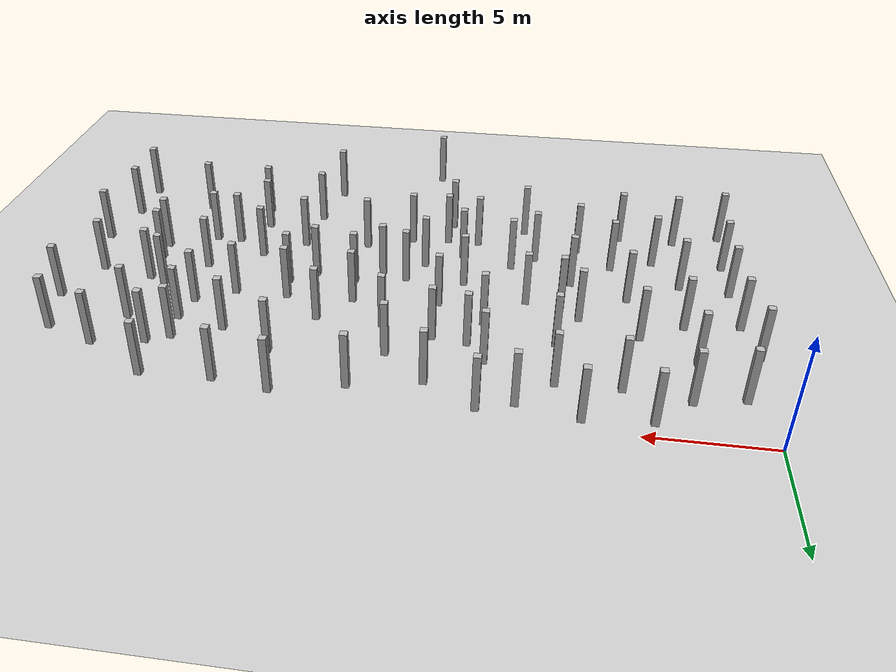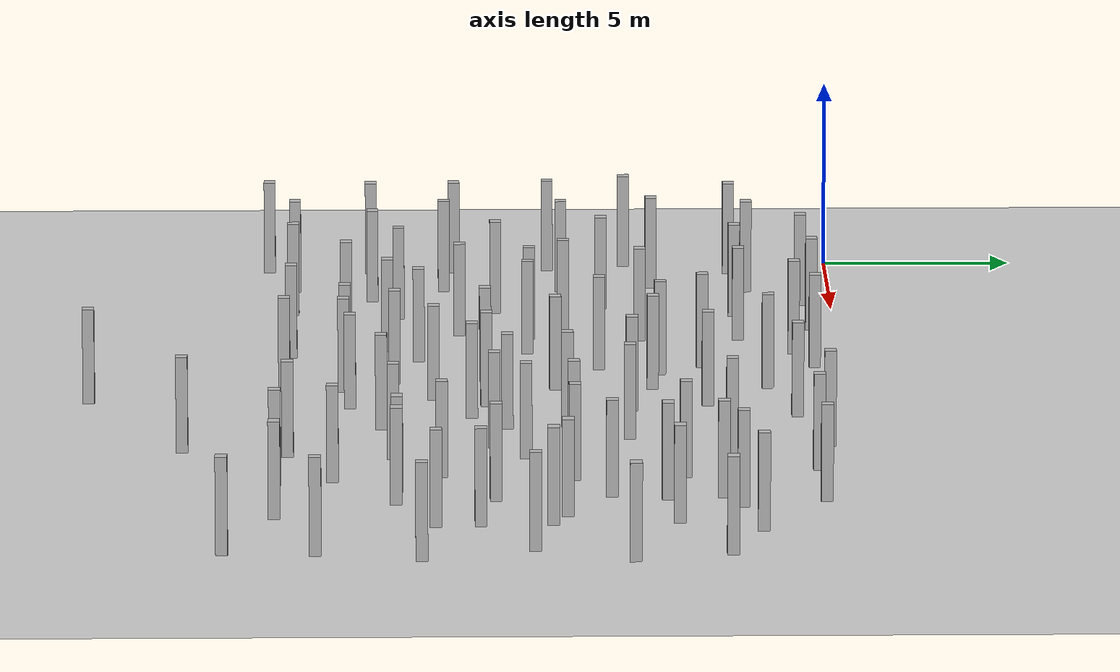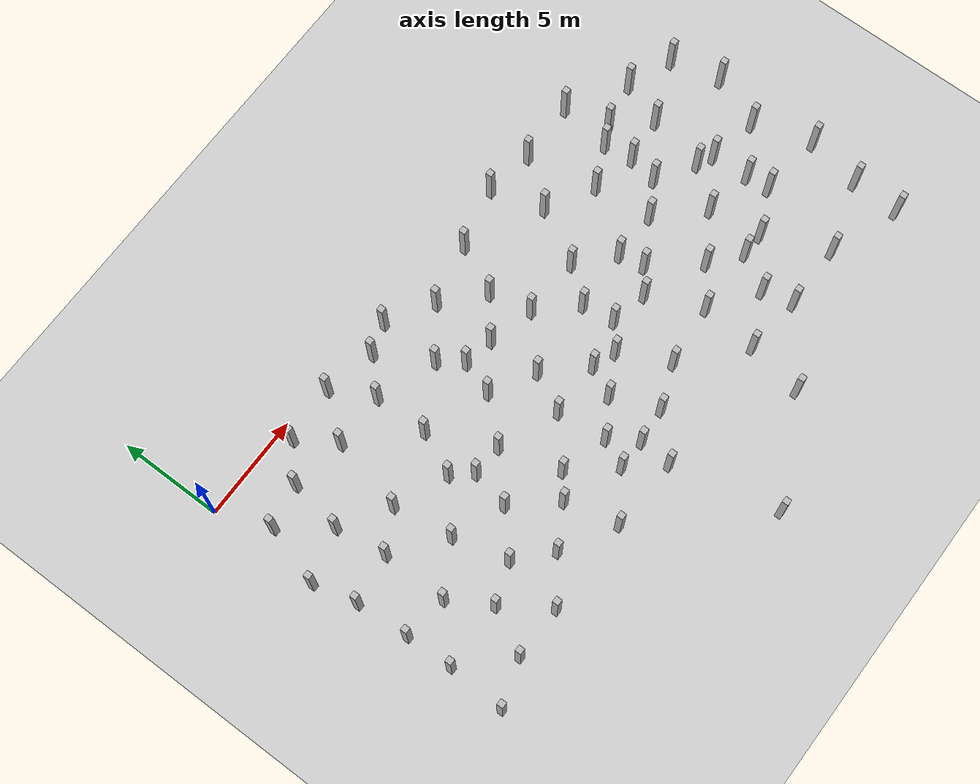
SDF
<sdf version="1.6">
 <world name="random_boxes_30x15_doubled">
  <include><uri>model://sun</uri></include>
  <include><uri>model://ground_plane</uri></include>
  <model name="box_32">
   <static>true</static>
   <pose>9.607 -1.170 1.250 0 0 0</pose>
   <link name="link">
    <visual name="visual"><geometry><box><size>0.3 0.3 2.5</size></box></geometry></visual>
    <collision name="collision"><geometry><box><size>0.3 0.3 2.5</size></box></geometry></collision>
   </link>
  </model>
  <model name="box_33">
   <static>true</static>
   <pose>24.341 -0.869 1.250 0 0 0</pose>
   <link name="link">
    <visual name="visual"><geometry><box><size>0.3 0.3 2.5</size></box></geometry></visual>
    <collision name="collision"><geometry><box><size>0.3 0.3 2.5</size></box></geometry></collision>
   </link>
  </model>
  <model name="box_34">
   <static>true</static>
   <pose>10.990 -3.620 1.250 0 0 0</pose>
   <link name="link">
    <visual name="visual"><geometry><box><size>0.3 0.3 2.5</size></box></geometry></visual>
    <collision name="collision"><geometry><box><size>0.3 0.3 2.5</size></box></geometry></collision>
   </link>
  </model>
  <model name="box_35">
   <static>true</static>
   <pose>11.214 -6.315 1.250 0 0 0</pose>
   <link name="link">
    <visual name="visual"><geometry><box><size>0.3 0.3 2.5</size></box></geometry></visual>
    <collision name="collision"><geometry><box><size>0.3 0.3 2.5</size></box></geometry></collision>
   </link>
  </model>
  <model name="box_38">
   <static>true</static>
   <pose>7.132 -0.618 1.250 0 0 0</pose>
   <link name="link">
    <visual name="visual"><geometry><box><size>0.3 0.3 2.5</size></box></geometry></visual>
    <collision name="collision"><geometry><box><size>0.3 0.3 2.5</size></box></geometry></collision>
   </link>
  </model>
  <model name="box_40">
   <static>true</static>
   <pose>21.379 -0.948 1.250 0 0 0</pose>
   <link name="link">
    <visual name="visual"><geometry><box><size>0.3 0.3 2.5</size></box></geometry></visual>
    <collision name="collision"><geometry><box><size>0.3 0.3 2.5</size></box></geometry></collision>
   </link>
  </model>
  <model name="box_41">
   <static>true</static>
   <pose>19.031 -0.583 1.250 0 0 0</pose>
   <link name="link">
    <visual name="visual"><geometry><box><size>0.3 0.3 2.5</size></box></geometry></visual>
    <collision name="collision"><geometry><box><size>0.3 0.3 2.5</size></box></geometry></collision>
   </link>
  </model>
  <model name="box_42">
   <static>true</static>
   <pose>8.155 -2.593 1.250 0 0 0</pose>
   <link name="link">
    <visual name="visual"><geometry><box><size>0.3 0.3 2.5</size></box></geometry></visual>
    <collision name="collision"><geometry><box><size>0.3 0.3 2.5</size></box></geometry></collision>
   </link>
  </model>
  <model name="box_47">
   <static>true</static>
   <pose>13.185 -1.972 1.250 0 0 0</pose>
   <link name="link">
    <visual name="visual"><geometry><box><size>0.3 0.3 2.5</size></box></geometry></visual>
    <collision name="collision"><geometry><box><size>0.3 0.3 2.5</size></box></geometry></collision>
   </link>
  </model>
  <model name="box_48">
   <static>true</static>
   <pose>13.267 -7.492 1.250 0 0 0</pose>
   <link name="link">
    <visual name="visual"><geometry><box><size>0.3 0.3 2.5</size></box></geometry></visual>
    <collision name="collision"><geometry><box><size>0.3 0.3 2.5</size></box></geometry></collision>
   </link>
  </model>
  <model name="box_49">
   <static>true</static>
   <pose>12.338 -9.302 1.250 0 0 0</pose>
   <link name="link">
    <visual name="visual"><geometry><box><size>0.3 0.3 2.5</size></box></geometry></visual>
    <collision name="collision"><geometry><box><size>0.3 0.3 2.5</size></box></geometry></collision>
   </link>
  </model>
  <model name="box_50">
   <static>true</static>
   <pose>14.975 -3.578 1.250 0 0 0</pose>
   <link name="link">
    <visual name="visual"><geometry><box><size>0.3 0.3 2.5</size></box></geometry></visual>
    <collision name="collision"><geometry><box><size>0.3 0.3 2.5</size></box></geometry></collision>
   </link>
  </model>
  <model name="box_53">
   <static>true</static>
   <pose>9.514 -8.173 1.250 0 0 0</pose>
   <link name="link">
    <visual name="visual"><geometry><box><size>0.3 0.3 2.5</size></box></geometry></visual>
    <collision name="collision"><geometry><box><size>0.3 0.3 2.5</size></box></geometry></collision>
   </link>
  </model>
  <model name="box_56">
   <static>true</static>
   <pose>16.117 -1.301 1.250 0 0 0</pose>
   <link name="link">
    <visual name="visual"><geometry><box><size>0.3 0.3 2.5</size></box></geometry></visual>
    <collision name="collision"><geometry><box><size>0.3 0.3 2.5</size></box></geometry></collision>
   </link>
  </model>
  <model name="box_62">
   <static>true</static>
   <pose>7.594 -9.944 1.250 0 0 0</pose>
   <link name="link">
    <visual name="visual"><geometry><box><size>0.3 0.3 2.5</size></box></geometry></visual>
    <collision name="collision"><geometry><box><size>0.3 0.3 2.5</size></box></geometry></collision>
   </link>
  </model>
  <model name="box_63">
   <static>true</static>
   <pose>8.157 -5.200 1.250 0 0 0</pose>
   <link name="link">
    <visual name="visual"><geometry><box><size>0.3 0.3 2.5</size></box></geometry></visual>
    <collision name="collision"><geometry><box><size>0.3 0.3 2.5</size></box></geometry></collision>
   </link>
  </model>
  <model name="box_64">
   <static>true</static>
   <pose>5.797 -11.557 1.250 0 0 0</pose>
   <link name="link">
    <visual name="visual"><geometry><box><size>0.3 0.3 2.5</size></box></geometry></visual>
    <collision name="collision"><geometry><box><size>0.3 0.3 2.5</size></box></geometry></collision>
   </link>
  </model>
  <model name="box_65">
   <static>true</static>
   <pose>14.249 -10.650 1.250 0 0 0</pose>
   <link name="link">
    <visual name="visual"><geometry><box><size>0.3 0.3 2.5</size></box></geometry></visual>
    <collision name="collision"><geometry><box><size>0.3 0.3 2.5</size></box></geometry></collision>
   </link>
  </model>
  <model name="box_66">
   <static>true</static>
   <pose>16.068 -9.671 1.250 0 0 0</pose>
   <link name="link">
    <visual name="visual"><geometry><box><size>0.3 0.3 2.5</size></box></geometry></visual>
    <collision name="collision"><geometry><box><size>0.3 0.3 2.5</size></box></geometry></collision>
   </link>
  </model>
  <model name="box_68">
   <static>true</static>
   <pose>5.149 -8.977 1.250 0 0 0</pose>
   <link name="link">
    <visual name="visual"><geometry><box><size>0.3 0.3 2.5</size></box></geometry></visual>
    <collision name="collision"><geometry><box><size>0.3 0.3 2.5</size></box></geometry></collision>
   </link>
  </model>
  <model name="box_69">
   <static>true</static>
   <pose>27.077 -2.532 1.250 0 0 0</pose>
   <link name="link">
    <visual name="visual"><geometry><box><size>0.3 0.3 2.5</size></box></geometry></visual>
    <collision name="collision"><geometry><box><size>0.3 0.3 2.5</size></box></geometry></collision>
   </link>
  </model>
  <model name="box_70">
   <static>true</static>
   <pose>5.330 -14.362 1.250 0 0 0</pose>
   <link name="link">
    <visual name="visual"><geometry><box><size>0.3 0.3 2.5</size></box></geometry></visual>
    <collision name="collision"><geometry><box><size>0.3 0.3 2.5</size></box></geometry></collision>
   </link>
  </model>
  <model name="box_72">
   <static>true</static>
   <pose>2.793 -14.334 1.250 0 0 0</pose>
   <link name="link">
    <visual name="visual"><geometry><box><size>0.3 0.3 2.5</size></box></geometry></visual>
    <collision name="collision"><geometry><box><size>0.3 0.3 2.5</size></box></geometry></collision>
   </link>
  </model>
  <model name="box_73">
   <static>true</static>
   <pose>17.202 -11.999 1.250 0 0 0</pose>
   <link name="link">
    <visual name="visual"><geometry><box><size>0.3 0.3 2.5</size></box></geometry></visual>
    <collision name="collision"><geometry><box><size>0.3 0.3 2.5</size></box></geometry></collision>
   </link>
  </model>
  <model name="box_75">
   <static>true</static>
   <pose>0.733 -12.309 1.250 0 0 0</pose>
   <link name="link">
    <visual name="visual"><geometry><box><size>0.3 0.3 2.5</size></box></geometry></visual>
    <collision name="collision"><geometry><box><size>0.3 0.3 2.5</size></box></geometry></collision>
   </link>
  </model>
  <model name="box_76">
   <static>true</static>
   <pose>15.127 -12.809 1.250 0 0 0</pose>
   <link name="link">
    <visual name="visual"><geometry><box><size>0.3 0.3 2.5</size></box></geometry></visual>
    <collision name="collision"><geometry><box><size>0.3 0.3 2.5</size></box></geometry></collision>
   </link>
  </model>
  <model name="box_77">
   <static>true</static>
   <pose>0.665 -10.064 1.250 0 0 0</pose>
   <link name="link">
    <visual name="visual"><geometry><box><size>0.3 0.3 2.5</size></box></geometry></visual>
    <collision name="collision"><geometry><box><size>0.3 0.3 2.5</size></box></geometry></collision>
   </link>
  </model>
  <model name="box_79">
   <static>true</static>
   <pose>4.726 -6.159 1.250 0 0 0</pose>
   <link name="link">
    <visual name="visual"><geometry><box><size>0.3 0.3 2.5</size></box></geometry></visual>
    <collision name="collision"><geometry><box><size>0.3 0.3 2.5</size></box></geometry></collision>
   </link>
  </model>
  <model name="box_80">
   <static>true</static>
   <pose>9.264 -11.854 1.250 0 0 0</pose>
   <link name="link">
    <visual name="visual"><geometry><box><size>0.3 0.3 2.5</size></box></geometry></visual>
    <collision name="collision"><geometry><box><size>0.3 0.3 2.5</size></box></geometry></collision>
   </link>
  </model>
  <model name="box_81">
   <static>true</static>
   <pose>7.227 -7.199 1.250 0 0 0</pose>
   <link name="link">
    <visual name="visual"><geometry><box><size>0.3 0.3 2.5</size></box></geometry></visual>
    <collision name="collision"><geometry><box><size>0.3 0.3 2.5</size></box></geometry></collision>
   </link>
  </model>
  <model name="box_82">
   <static>true</static>
   <pose>20.149 -11.694 1.250 0 0 0</pose>
   <link name="link">
    <visual name="visual"><geometry><box><size>0.3 0.3 2.5</size></box></geometry></visual>
    <collision name="collision"><geometry><box><size>0.3 0.3 2.5</size></box></geometry></collision>
   </link>
  </model>
  <model name="box_84">
   <static>true</static>
   <pose>5.568 -2.623 1.250 0 0 0</pose>
   <link name="link">
    <visual name="visual"><geometry><box><size>0.3 0.3 2.5</size></box></geometry></visual>
    <collision name="collision"><geometry><box><size>0.3 0.3 2.5</size></box></geometry></collision>
   </link>
  </model>
  <model name="box_85">
   <static>true</static>
   <pose>17.014 -7.233 1.250 0 0 0</pose>
   <link name="link">
    <visual name="visual"><geometry><box><size>0.3 0.3 2.5</size></box></geometry></visual>
    <collision name="collision"><geometry><box><size>0.3 0.3 2.5</size></box></geometry></collision>
   </link>
  </model>
  <model name="box_86">
   <static>true</static>
   <pose>2.509 -4.770 1.250 0 0 0</pose>
   <link name="link">
    <visual name="visual"><geometry><box><size>0.3 0.3 2.5</size></box></geometry></visual>
    <collision name="collision"><geometry><box><size>0.3 0.3 2.5</size></box></geometry></collision>
   </link>
  </model>
  <model name="box_87">
   <static>true</static>
   <pose>13.319 -14.522 1.250 0 0 0</pose>
   <link name="link">
    <visual name="visual"><geometry><box><size>0.3 0.3 2.5</size></box></geometry></visual>
    <collision name="collision"><geometry><box><size>0.3 0.3 2.5</size></box></geometry></collision>
   </link>
  </model>
  <model name="box_92">
   <static>true</static>
   <pose>7.337 -12.948 1.250 0 0 0</pose>
   <link name="link">
    <visual name="visual"><geometry><box><size>0.3 0.3 2.5</size></box></geometry></visual>
    <collision name="collision"><geometry><box><size>0.3 0.3 2.5</size></box></geometry></collision>
   </link>
  </model>
  <model name="box_93">
   <static>true</static>
   <pose>0.506 -7.538 1.250 0 0 0</pose>
   <link name="link">
    <visual name="visual"><geometry><box><size>0.3 0.3 2.5</size></box></geometry></visual>
    <collision name="collision"><geometry><box><size>0.3 0.3 2.5</size></box></geometry></collision>
   </link>
  </model>
  <model name="box_94">
   <static>true</static>
   <pose>15.419 -5.550 1.250 0 0 0</pose>
   <link name="link">
    <visual name="visual"><geometry><box><size>0.3 0.3 2.5</size></box></geometry></visual>
    <collision name="collision"><geometry><box><size>0.3 0.3 2.5</size></box></geometry></collision>
   </link>
  </model>
  <model name="box_95">
   <static>true</static>
   <pose>0.024 -5.466 1.250 0 0 0</pose>
   <link name="link">
    <visual name="visual"><geometry><box><size>0.3 0.3 2.5</size></box></geometry></visual>
    <collision name="collision"><geometry><box><size>0.3 0.3 2.5</size></box></geometry></collision>
   </link>
  </model>
  <model name="box_96">
   <static>true</static>
   <pose>3.891 -12.258 1.250 0 0 0</pose>
   <link name="link">
    <visual name="visual"><geometry><box><size>0.3 0.3 2.5</size></box></geometry></visual>
    <collision name="collision"><geometry><box><size>0.3 0.3 2.5</size></box></geometry></collision>
   </link>
  </model>
  <model name="box_97">
   <static>true</static>
   <pose>11.995 -12.954 1.250 0 0 0</pose>
   <link name="link">
    <visual name="visual"><geometry><box><size>0.3 0.3 2.5</size></box></geometry></visual>
    <collision name="collision"><geometry><box><size>0.3 0.3 2.5</size></box></geometry></collision>
   </link>
  </model>
  <model name="box_98">
   <static>true</static>
   <pose>26.292 -4.584 1.250 0 0 0</pose>
   <link name="link">
    <visual name="visual"><geometry><box><size>0.3 0.3 2.5</size></box></geometry></visual>
    <collision name="collision"><geometry><box><size>0.3 0.3 2.5</size></box></geometry></collision>
   </link>
  </model>
  <model name="box_100">
   <static>true</static>
   <pose>0.906 -2.638 1.250 0 0 0</pose>
   <link name="link">
    <visual name="visual"><geometry><box><size>0.3 0.3 2.5</size></box></geometry></visual>
    <collision name="collision"><geometry><box><size>0.3 0.3 2.5</size></box></geometry></collision>
   </link>
  </model>
  <model name="box_101">
   <static>true</static>
   <pose>19.896 -14.367 1.250 0 0 0</pose>
   <link name="link">
    <visual name="visual"><geometry><box><size>0.3 0.3 2.5</size></box></geometry></visual>
    <collision name="collision"><geometry><box><size>0.3 0.3 2.5</size></box></geometry></collision>
   </link>
  </model>
  <model name="box_103">
   <static>true</static>
   <pose>29.272 -3.357 1.250 0 0 0</pose>
   <link name="link">
    <visual name="visual"><geometry><box><size>0.3 0.3 2.5</size></box></geometry></visual>
    <collision name="collision"><geometry><box><size>0.3 0.3 2.5</size></box></geometry></collision>
   </link>
  </model>
  <model name="box_104">
   <static>true</static>
   <pose>2.790 -10.345 1.250 0 0 0</pose>
   <link name="link">
    <visual name="visual"><geometry><box><size>0.3 0.3 2.5</size></box></geometry></visual>
    <collision name="collision"><geometry><box><size>0.3 0.3 2.5</size></box></geometry></collision>
   </link>
  </model>
  <model name="box_105">
   <static>true</static>
   <pose>19.723 -3.090 1.250 0 0 0</pose>
   <link name="link">
    <visual name="visual"><geometry><box><size>0.3 0.3 2.5</size></box></geometry></visual>
    <collision name="collision"><geometry><box><size>0.3 0.3 2.5</size></box></geometry></collision>
   </link>
  </model>
  <model name="box_107">
   <static>true</static>
   <pose>21.999 -4.325 1.250 0 0 0</pose>
   <link name="link">
    <visual name="visual"><geometry><box><size>0.3 0.3 2.5</size></box></geometry></visual>
    <collision name="collision"><geometry><box><size>0.3 0.3 2.5</size></box></geometry></collision>
   </link>
  </model>
  <model name="box_108">
   <static>true</static>
   <pose>22.332 -13.213 1.250 0 0 0</pose>
   <link name="link">
    <visual name="visual"><geometry><box><size>0.3 0.3 2.5</size></box></geometry></visual>
    <collision name="collision"><geometry><box><size>0.3 0.3 2.5</size></box></geometry></collision>
   </link>
  </model>
  <model name="box_109">
   <static>true</static>
   <pose>4.441 -0.820 1.250 0 0 0</pose>
   <link name="link">
    <visual name="visual"><geometry><box><size>0.3 0.3 2.5</size></box></geometry></visual>
    <collision name="collision"><geometry><box><size>0.3 0.3 2.5</size></box></geometry></collision>
   </link>
  </model>
  <model name="box_110">
   <static>true</static>
   <pose>19.935 -7.115 1.250 0 0 0</pose>
   <link name="link">
    <visual name="visual"><geometry><box><size>0.3 0.3 2.5</size></box></geometry></visual>
    <collision name="collision"><geometry><box><size>0.3 0.3 2.5</size></box></geometry></collision>
   </link>
  </model>
  <model name="box_111">
   <static>true</static>
   <pose>29.847 -5.750 1.250 0 0 0</pose>
   <link name="link">
    <visual name="visual"><geometry><box><size>0.3 0.3 2.5</size></box></geometry></visual>
    <collision name="collision"><geometry><box><size>0.3 0.3 2.5</size></box></geometry></collision>
   </link>
  </model>
  <model name="box_112">
   <static>true</static>
   <pose>19.030 -9.124 1.250 0 0 0</pose>
   <link name="link">
    <visual name="visual"><geometry><box><size>0.3 0.3 2.5</size></box></geometry></visual>
    <collision name="collision"><geometry><box><size>0.3 0.3 2.5</size></box></geometry></collision>
   </link>
  </model>
  <model name="box_113">
   <static>true</static>
   <pose>13.234 -4.960 1.250 0 0 0</pose>
   <link name="link">
    <visual name="visual"><geometry><box><size>0.3 0.3 2.5</size></box></geometry></visual>
    <collision name="collision"><geometry><box><size>0.3 0.3 2.5</size></box></geometry></collision>
   </link>
  </model>
  <model name="box_115">
   <static>true</static>
   <pose>24.506 -11.611 1.250 0 0 0</pose>
   <link name="link">
    <visual name="visual"><geometry><box><size>0.3 0.3 2.5</size></box></geometry></visual>
    <collision name="collision"><geometry><box><size>0.3 0.3 2.5</size></box></geometry></collision>
   </link>
  </model>
  <model name="box_116">
   <static>true</static>
   <pose>22.254 -7.123 1.250 0 0 0</pose>
   <link name="link">
    <visual name="visual"><geometry><box><size>0.3 0.3 2.5</size></box></geometry></visual>
    <collision name="collision"><geometry><box><size>0.3 0.3 2.5</size></box></geometry></collision>
   </link>
  </model>
  <model name="box_117">
   <static>true</static>
   <pose>14.496 -19.554 1.250 0 0 0</pose>
   <link name="link">
    <visual name="visual"><geometry><box><size>0.3 0.3 2.5</size></box></geometry></visual>
    <collision name="collision"><geometry><box><size>0.3 0.3 2.5</size></box></geometry></collision>
   </link>
  </model>
  <model name="box_118">
   <static>true</static>
   <pose>26.630 -10.632 1.250 0 0 0</pose>
   <link name="link">
    <visual name="visual"><geometry><box><size>0.3 0.3 2.5</size></box></geometry></visual>
    <collision name="collision"><geometry><box><size>0.3 0.3 2.5</size></box></geometry></collision>
   </link>
  </model>
  <model name="box_119">
   <static>true</static>
   <pose>21.927 -10.469 1.250 0 0 0</pose>
   <link name="link">
    <visual name="visual"><geometry><box><size>0.3 0.3 2.5</size></box></geometry></visual>
    <collision name="collision"><geometry><box><size>0.3 0.3 2.5</size></box></geometry></collision>
   </link>
  </model>
  <model name="box_123">
   <static>true</static>
   <pose>2.956 -2.227 1.250 0 0 0</pose>
   <link name="link">
    <visual name="visual"><geometry><box><size>0.3 0.3 2.5</size></box></geometry></visual>
    <collision name="collision"><geometry><box><size>0.3 0.3 2.5</size></box></geometry></collision>
   </link>
  </model>
  <model name="box_124">
   <static>true</static>
   <pose>26.450 -7.715 1.250 0 0 0</pose>
   <link name="link">
    <visual name="visual"><geometry><box><size>0.3 0.3 2.5</size></box></geometry></visual>
    <collision name="collision"><geometry><box><size>0.3 0.3 2.5</size></box></geometry></collision>
   </link>
  </model>
  <model name="box_125">
   <static>true</static>
   <pose>24.882 -2.966 1.250 0 0 0</pose>
   <link name="link">
    <visual name="visual"><geometry><box><size>0.3 0.3 2.5</size></box></geometry></visual>
    <collision name="collision"><geometry><box><size>0.3 0.3 2.5</size></box></geometry></collision>
   </link>
  </model>
  <model name="box_127">
   <static>true</static>
   <pose>9.850 -14.372 1.250 0 0 0</pose>
   <link name="link">
    <visual name="visual"><geometry><box><size>0.3 0.3 2.5</size></box></geometry></visual>
    <collision name="collision"><geometry><box><size>0.3 0.3 2.5</size></box></geometry></collision>
   </link>
  </model>
  <model name="box_128">
   <static>true</static>
   <pose>24.176 -9.121 1.250 0 0 0</pose>
   <link name="link">
    <visual name="visual"><geometry><box><size>0.3 0.3 2.5</size></box></geometry></visual>
    <collision name="collision"><geometry><box><size>0.3 0.3 2.5</size></box></geometry></collision>
   </link>
  </model>
  <model name="box_129">
   <static>true</static>
   <pose>29.147 -15.884 1.250 0 0 0</pose>
   <link name="link">
    <visual name="visual"><geometry><box><size>0.3 0.3 2.5</size></box></geometry></visual>
    <collision name="collision"><geometry><box><size>0.3 0.3 2.5</size></box></geometry></collision>
   </link>
  </model>
  <model name="box_130">
   <static>true</static>
   <pose>29.221 -13.592 1.250 0 0 0</pose>
   <link name="link">
    <visual name="visual"><geometry><box><size>0.3 0.3 2.5</size></box></geometry></visual>
    <collision name="collision"><geometry><box><size>0.3 0.3 2.5</size></box></geometry></collision>
   </link>
  </model>
  <model name="box_131">
   <static>true</static>
   <pose>24.119 -4.830 1.250 0 0 0</pose>
   <link name="link">
    <visual name="visual"><geometry><box><size>0.3 0.3 2.5</size></box></geometry></visual>
    <collision name="collision"><geometry><box><size>0.3 0.3 2.5</size></box></geometry></collision>
   </link>
  </model>
  <model name="box_132">
   <static>true</static>
   <pose>0.606 -15.048 1.250 0 0 0</pose>
   <link name="link">
    <visual name="visual"><geometry><box><size>0.3 0.3 2.5</size></box></geometry></visual>
    <collision name="collision"><geometry><box><size>0.3 0.3 2.5</size></box></geometry></collision>
   </link>
  </model>
  <model name="box_133">
   <static>true</static>
   <pose>2.858 -7.207 1.250 0 0 0</pose>
   <link name="link">
    <visual name="visual"><geometry><box><size>0.3 0.3 2.5</size></box></geometry></visual>
    <collision name="collision"><geometry><box><size>0.3 0.3 2.5</size></box></geometry></collision>
   </link>
  </model>
  <model name="box_134">
   <static>true</static>
   <pose>28.838 -8.189 1.250 0 0 0</pose>
   <link name="link">
    <visual name="visual"><geometry><box><size>0.3 0.3 2.5</size></box></geometry></visual>
    <collision name="collision"><geometry><box><size>0.3 0.3 2.5</size></box></geometry></collision>
   </link>
  </model>
  <model name="box_135">
   <static>true</static>
   <pose>18.283 -5.658 1.250 0 0 0</pose>
   <link name="link">
    <visual name="visual"><geometry><box><size>0.3 0.3 2.5</size></box></geometry></visual>
    <collision name="collision"><geometry><box><size>0.3 0.3 2.5</size></box></geometry></collision>
   </link>
  </model>
  <model name="box_140">
   <static>true</static>
   <pose>20.147 -8.327 1.250 0 0 0</pose>
   <link name="link">
    <visual name="visual"><geometry><box><size>0.3 0.3 2.5</size></box></geometry></visual>
    <collision name="collision"><geometry><box><size>0.3 0.3 2.5</size></box></geometry></collision>
   </link>
  </model>
  <model name="box_142">
   <static>true</static>
   <pose>10.320 -11.028 1.250 0 0 0</pose>
   <link name="link">
    <visual name="visual"><geometry><box><size>0.3 0.3 2.5</size></box></geometry></visual>
    <collision name="collision"><geometry><box><size>0.3 0.3 2.5</size></box></geometry></collision>
   </link>
  </model>
  <model name="box_143">
   <static>true</static>
   <pose>22.695 -14.659 1.250 0 0 0</pose>
   <link name="link">
    <visual name="visual"><geometry><box><size>0.3 0.3 2.5</size></box></geometry></visual>
    <collision name="collision"><geometry><box><size>0.3 0.3 2.5</size></box></geometry></collision>
   </link>
  </model>
  <model name="box_144">
   <static>true</static>
   <pose>26.551 -9.516 1.250 0 0 0</pose>
   <link name="link">
    <visual name="visual"><geometry><box><size>0.3 0.3 2.5</size></box></geometry></visual>
    <collision name="collision"><geometry><box><size>0.3 0.3 2.5</size></box></geometry></collision>
   </link>
  </model>
  <model name="box_145">
   <static>true</static>
   <pose>23.858 -6.216 1.250 0 0 0</pose>
   <link name="link">
    <visual name="visual"><geometry><box><size>0.3 0.3 2.5</size></box></geometry></visual>
    <collision name="collision"><geometry><box><size>0.3 0.3 2.5</size></box></geometry></collision>
   </link>
  </model>
  <model name="box_150">
   <static>true</static>
   <pose>11.758 -4.735 1.250 0 0 0</pose>
   <link name="link">
    <visual name="visual"><geometry><box><size>0.3 0.3 2.5</size></box></geometry></visual>
    <collision name="collision"><geometry><box><size>0.3 0.3 2.5</size></box></geometry></collision>
   </link>
  </model>
  <model name="box_152">
   <static>true</static>
   <pose>13.435 -12.980 1.250 0 0 0</pose>
   <link name="link">
    <visual name="visual"><geometry><box><size>0.3 0.3 2.5</size></box></geometry></visual>
    <collision name="collision"><geometry><box><size>0.3 0.3 2.5</size></box></geometry></collision>
   </link>
  </model>
  <model name="box_156">
   <static>true</static>
   <pose>29.742 -10.985 1.250 0 0 0</pose>
   <link name="link">
    <visual name="visual"><geometry><box><size>0.3 0.3 2.5</size></box></geometry></visual>
    <collision name="collision"><geometry><box><size>0.3 0.3 2.5</size></box></geometry></collision>
   </link>
  </model>
  <model name="box_157">
   <static>true</static>
   <pose>23.364 -11.597 1.250 0 0 0</pose>
   <link name="link">
    <visual name="visual"><geometry><box><size>0.3 0.3 2.5</size></box></geometry></visual>
    <collision name="collision"><geometry><box><size>0.3 0.3 2.5</size></box></geometry></collision>
   </link>
  </model>
  <model name="box_161">
   <static>true</static>
   <pose>14.957 -9.288 1.250 0 0 0</pose>
   <link name="link">
    <visual name="visual"><geometry><box><size>0.3 0.3 2.5</size></box></geometry></visual>
    <collision name="collision"><geometry><box><size>0.3 0.3 2.5</size></box></geometry></collision>
   </link>
  </model>
  <model name="box_162">
   <static>true</static>
   <pose>25.688 -7.348 1.250 0 0 0</pose>
   <link name="link">
    <visual name="visual"><geometry><box><size>0.3 0.3 2.5</size></box></geometry></visual>
    <collision name="collision"><geometry><box><size>0.3 0.3 2.5</size></box></geometry></collision>
   </link>
  </model>
  <model name="box_167">
   <static>true</static>
   <pose>17.218 -8.773 1.250 0 0 0</pose>
   <link name="link">
    <visual name="visual"><geometry><box><size>0.3 0.3 2.5</size></box></geometry></visual>
    <collision name="collision"><geometry><box><size>0.3 0.3 2.5</size></box></geometry></collision>
   </link>
  </model>
  <model name="box_169">
   <static>true</static>
   <pose>25.790 -14.636 1.250 0 0 0</pose>
   <link name="link">
    <visual name="visual"><geometry><box><size>0.3 0.3 2.5</size></box></geometry></visual>
    <collision name="collision"><geometry><box><size>0.3 0.3 2.5</size></box></geometry></collision>
   </link>
  </model>
  <model name="box_170">
   <static>true</static>
   <pose>12.607 -11.666 1.250 0 0 0</pose>
   <link name="link">
    <visual name="visual"><geometry><box><size>0.3 0.3 2.5</size></box></geometry></visual>
    <collision name="collision"><geometry><box><size>0.3 0.3 2.5</size></box></geometry></collision>
   </link>
  </model>
  <model name="box_174">
   <static>true</static>
   <pose>23.953 -3.425 1.250 0 0 0</pose>
   <link name="link">
    <visual name="visual"><geometry><box><size>0.3 0.3 2.5</size></box></geometry></visual>
    <collision name="collision"><geometry><box><size>0.3 0.3 2.5</size></box></geometry></collision>
   </link>
  </model>
  <model name="box_175">
   <static>true</static>
   <pose>11.056 -0.669 1.250 0 0 0</pose>
   <link name="link">
    <visual name="visual"><geometry><box><size>0.3 0.3 2.5</size></box></geometry></visual>
    <collision name="collision"><geometry><box><size>0.3 0.3 2.5</size></box></geometry></collision>
   </link>
  </model>
  <model name="box_177">
   <static>true</static>
   <pose>8.006 -8.110 1.250 0 0 0</pose>
   <link name="link">
    <visual name="visual"><geometry><box><size>0.3 0.3 2.5</size></box></geometry></visual>
    <collision name="collision"><geometry><box><size>0.3 0.3 2.5</size></box></geometry></collision>
   </link>
  </model>
  <model name="box_178">
   <static>true</static>
   <pose>19.393 -17.048 1.250 0 0 0</pose>
   <link name="link">
    <visual name="visual"><geometry><box><size>0.3 0.3 2.5</size></box></geometry></visual>
    <collision name="collision"><geometry><box><size>0.3 0.3 2.5</size></box></geometry></collision>
   </link>
  </model>
 </world>
</sdf>
